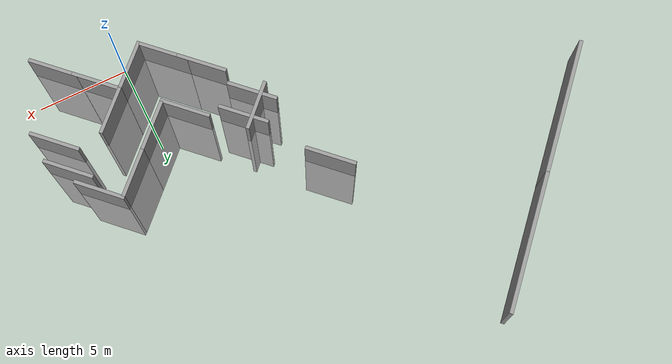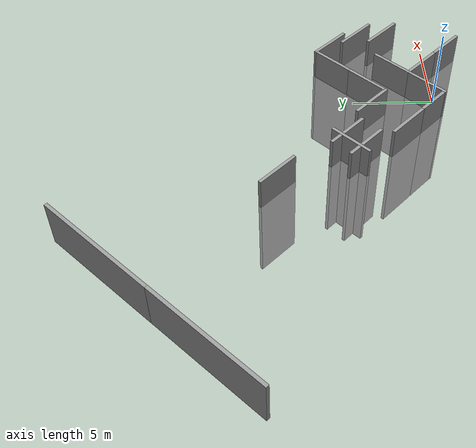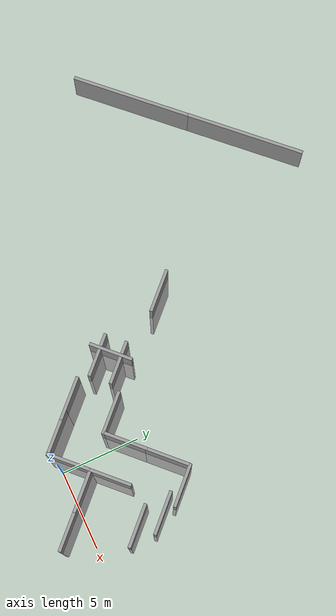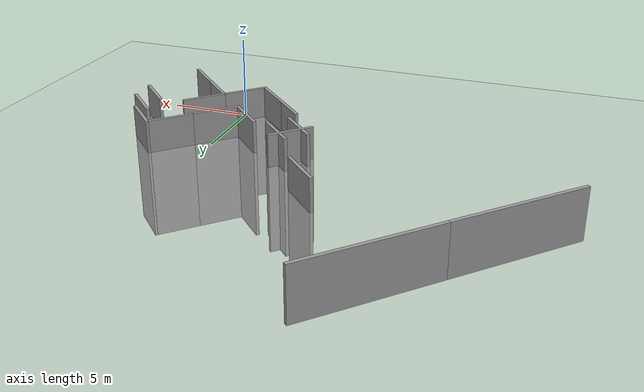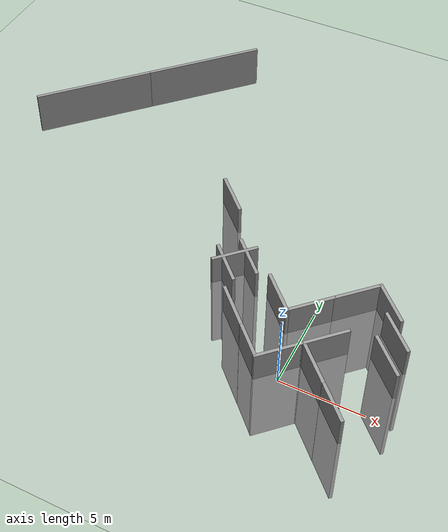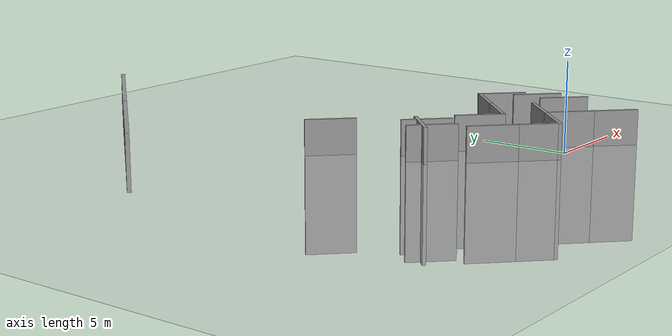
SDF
<sdf version="1.7">
 <world name="default">
  <light name="sun" type="directional">
   <pose>0 0 10 0 -0 0</pose>
   <diffuse>0.8 0.8 0.8 1</diffuse>
   <specular>0.2 0.2 0.2 1</specular>
   <attenuation>
    <range>1000</range>
    <constant>0.9</constant>
    <linear>0.01</linear>
    <quadratic>0.001</quadratic>
   </attenuation>
   <direction>-0.5 0.1 -0.9</direction>
   <spot><inner_angle>0</inner_angle><outer_angle>0</outer_angle><falloff>0</falloff></spot>
  </light>
  <gravity>0 0 -9.8</gravity>
  <magnetic_field>6e-06 2.3e-05 -4.2e-05</magnetic_field>
  <atmosphere type="adiabatic"/>
  <physics type="ode">
   <max_step_size>0.00025</max_step_size>
   <real_time_factor>1</real_time_factor>
   <real_time_update_rate>4000</real_time_update_rate>
  </physics>
  <scene><ambient>1 1 1 1</ambient><background>0.7 0.7 0.7 1</background><shadows>1</shadows></scene>
  <spherical_coordinates>
   <surface_model>EARTH_WGS84</surface_model>
   <latitude_deg>0</latitude_deg>
   <longitude_deg>0</longitude_deg>
   <elevation>0</elevation>
   <heading_deg>0</heading_deg>
  </spherical_coordinates>
  <model name="ground_plane">
   <static>1</static>
   <link name="link">
    <collision name="collision">
     <geometry><plane><normal>0 0 1</normal><size>100 100</size></plane></geometry>
     <surface>
      <contact><collide_bitmask>65535</collide_bitmask></contact>
      <friction><ode><mu>100</mu><mu2>50</mu2></ode></friction>
     </surface>
     <max_contacts>20</max_contacts>
    </collision>
    <visual name="visual">
     <cast_shadows>0</cast_shadows>
     <geometry><plane><normal>0 0 1</normal><size>100 100</size></plane></geometry>
     <material>
      <script><uri>file://media/materials/scripts/gazebo.material</uri><name>Gazebo/Grey</name></script>
     </material>
    </visual>
   </link>
   <pose>-5.10672 4.65884 0 0 -0 0</pose>
  </model>
  <model name="grey_wall">
   <static>1</static>
   <link name="link">
    <pose>0 0 1.4 0 -0 0</pose>
    <collision name="collision"><geometry><box><size>7.5 0.2 2.8</size></box></geometry></collision>
    <visual name="visual">
     <cast_shadows>0</cast_shadows>
     <geometry><box><size>7.5 0.2 2.8</size></box></geometry>
     <material>
      <script>
       <uri>model://grey_wall/materials/scripts</uri>
       <uri>model://grey_wall/materials/textures</uri>
       <name>vrc/grey_wall</name>
      </script>
     </material>
    </visual>
   </link>
   <pose>-14.0717 18.7948 0.84121 0 -0 0.808046</pose>
  </model>
  <model name="grey_wall_clone">
   <static>1</static>
   <link name="link">
    <pose>0 0 1.4 0 -0 0</pose>
    <collision name="collision"><geometry><box><size>7.5 0.2 2.8</size></box></geometry></collision>
    <visual name="visual">
     <cast_shadows>0</cast_shadows>
     <geometry><box><size>7.5 0.2 2.8</size></box></geometry>
     <material>
      <script>
       <uri>model://grey_wall/materials/scripts</uri>
       <uri>model://grey_wall/materials/textures</uri>
       <name>vrc/grey_wall</name>
      </script>
     </material>
    </visual>
   </link>
   <pose>-19.2303 13.392 0.84121 0 -0 0.808046</pose>
  </model>
  <audio><device>default</device></audio>
  <model name="grey_wall_0">
   <static>1</static>
   <link name="link">
    <pose>0 0 1.4 0 -0 0</pose>
    <collision name="collision"><geometry><box><size>7.5 0.2 2.8</size></box></geometry></collision>
    <visual name="visual">
     <cast_shadows>0</cast_shadows>
     <geometry><box><size>7.5 0.2 2.8</size></box></geometry>
     <material>
      <script>
       <uri>model://grey_wall/materials/scripts</uri>
       <uri>model://grey_wall/materials/textures</uri>
       <name>vrc/grey_wall</name>
      </script>
     </material>
    </visual>
   </link>
   <pose>-6.62154 8.95976 -1.8109 2.3562 -1.57079 -3.14159</pose>
  </model>
  <model name="grey_wall_0_clone">
   <static>1</static>
   <link name="link">
    <pose>0 0 1.4 0 -0 0</pose>
    <collision name="collision"><geometry><box><size>7.5 0.2 2.8</size></box></geometry></collision>
    <visual name="visual">
     <cast_shadows>0</cast_shadows>
     <geometry><box><size>7.5 0.2 2.8</size></box></geometry>
     <material>
      <script>
       <uri>model://grey_wall/materials/scripts</uri>
       <uri>model://grey_wall/materials/textures</uri>
       <name>vrc/grey_wall</name>
      </script>
     </material>
    </visual>
   </link>
   <pose>2.62661 -0.320634 -1.8109 2.34702 -1.57079 -3.13242</pose>
  </model>
  <model name="grey_wall_0_clone_0">
   <static>1</static>
   <link name="link">
    <pose>0 0 1.4 0 -0 0</pose>
    <collision name="collision"><geometry><box><size>7.5 0.2 2.8</size></box></geometry></collision>
    <visual name="visual">
     <cast_shadows>0</cast_shadows>
     <geometry><box><size>7.5 0.2 2.8</size></box></geometry>
     <material>
      <script>
       <uri>model://grey_wall/materials/scripts</uri>
       <uri>model://grey_wall/materials/textures</uri>
       <name>vrc/grey_wall</name>
      </script>
     </material>
    </visual>
   </link>
   <pose>4.38509 -2.07055 -1.8109 2.3562 -1.57079 -3.14159</pose>
  </model>
  <model name="grey_wall_0_clone_0_clone">
   <static>1</static>
   <link name="link">
    <pose>0 0 1.4 0 -0 0</pose>
    <collision name="collision"><geometry><box><size>7.5 0.2 2.8</size></box></geometry></collision>
    <visual name="visual">
     <cast_shadows>0</cast_shadows>
     <geometry><box><size>7.5 0.2 2.8</size></box></geometry>
     <material>
      <script>
       <uri>model://grey_wall/materials/scripts</uri>
       <uri>model://grey_wall/materials/textures</uri>
       <name>vrc/grey_wall</name>
      </script>
     </material>
    </visual>
   </link>
   <pose>5.85558 3.51124 -1.8109 2.34702 -1.57079 -3.13242</pose>
  </model>
  <model name="grey_wall_0_clone_0_clone_0">
   <static>1</static>
   <link name="link">
    <pose>0 0 1.4 0 -0 0</pose>
    <collision name="collision"><geometry><box><size>7.5 0.2 2.8</size></box></geometry></collision>
    <visual name="visual">
     <cast_shadows>0</cast_shadows>
     <geometry><box><size>7.5 0.2 2.8</size></box></geometry>
     <material>
      <script>
       <uri>model://grey_wall/materials/scripts</uri>
       <uri>model://grey_wall/materials/textures</uri>
       <name>vrc/grey_wall</name>
      </script>
     </material>
    </visual>
   </link>
   <pose>5.91185 1.80361 -1.8109 2.34702 -1.57079 -3.13242</pose>
  </model>
  <model name="grey_wall_0_clone_0_clone_clone">
   <static>1</static>
   <link name="link">
    <pose>0 0 1.4 0 -0 0</pose>
    <collision name="collision"><geometry><box><size>7.5 0.2 2.8</size></box></geometry></collision>
    <visual name="visual">
     <cast_shadows>0</cast_shadows>
     <geometry><box><size>7.5 0.2 2.8</size></box></geometry>
     <material>
      <script>
       <uri>model://grey_wall/materials/scripts</uri>
       <uri>model://grey_wall/materials/textures</uri>
       <name>vrc/grey_wall</name>
      </script>
     </material>
    </visual>
   </link>
   <pose>4.85368 5.27305 -1.8109 2.35102 -1.57079 -3.13642</pose>
  </model>
  <model name="grey_wall_0_clone_0_clone_0_clone">
   <static>1</static>
   <link name="link">
    <pose>0 0 1.4 0 -0 0</pose>
    <collision name="collision"><geometry><box><size>7.5 0.2 2.8</size></box></geometry></collision>
    <visual name="visual">
     <cast_shadows>0</cast_shadows>
     <geometry><box><size>7.5 0.2 2.8</size></box></geometry>
     <material>
      <script>
       <uri>model://grey_wall/materials/scripts</uri>
       <uri>model://grey_wall/materials/textures</uri>
       <name>vrc/grey_wall</name>
      </script>
     </material>
    </visual>
   </link>
   <pose>0.601646 1.48967 -1.8109 0.778192 -1.57079 -3.13439</pose>
  </model>
  <model name="grey_wall_0_clone_0_clone_0_clone_clone">
   <static>1</static>
   <link name="link">
    <pose>0 0 1.4 0 -0 0</pose>
    <collision name="collision"><geometry><box><size>7.5 0.2 2.8</size></box></geometry></collision>
    <visual name="visual">
     <cast_shadows>0</cast_shadows>
     <geometry><box><size>7.5 0.2 2.8</size></box></geometry>
     <material>
      <script>
       <uri>model://grey_wall/materials/scripts</uri>
       <uri>model://grey_wall/materials/textures</uri>
       <name>vrc/grey_wall</name>
      </script>
     </material>
    </visual>
   </link>
   <pose>0.921107 5.16672 -1.8109 0.784397 -1.57079 -3.14059</pose>
  </model>
  <model name="grey_wall_0_clone_0_clone_0_clone_clone_0">
   <static>1</static>
   <link name="link">
    <pose>0 0 1.4 0 -0 0</pose>
    <collision name="collision"><geometry><box><size>7.5 0.2 2.8</size></box></geometry></collision>
    <visual name="visual">
     <cast_shadows>0</cast_shadows>
     <geometry><box><size>7.5 0.2 2.8</size></box></geometry>
     <material>
      <script>
       <uri>model://grey_wall/materials/scripts</uri>
       <uri>model://grey_wall/materials/textures</uri>
       <name>vrc/grey_wall</name>
      </script>
     </material>
    </visual>
   </link>
   <pose>-0.984352 3.2639 -1.8109 0.784397 -1.57079 -3.14059</pose>
  </model>
  <model name="grey_wall_0_clone_clone">
   <static>1</static>
   <link name="link">
    <pose>0 0 1.4 0 -0 0</pose>
    <collision name="collision"><geometry><box><size>7.5 0.2 2.8</size></box></geometry></collision>
    <visual name="visual">
     <cast_shadows>0</cast_shadows>
     <geometry><box><size>7.5 0.2 2.8</size></box></geometry>
     <material>
      <script>
       <uri>model://grey_wall/materials/scripts</uri>
       <uri>model://grey_wall/materials/textures</uri>
       <name>vrc/grey_wall</name>
      </script>
     </material>
    </visual>
   </link>
   <pose>-0.941615 3.1615 -1.8109 2.34702 -1.57079 -3.13242</pose>
  </model>
  <model name="grey_wall_0_clone_0_clone_0_clone_clone_1">
   <static>1</static>
   <link name="link">
    <pose>0 0 1.4 0 -0 0</pose>
    <collision name="collision"><geometry><box><size>7.5 0.2 2.8</size></box></geometry></collision>
    <visual name="visual">
     <cast_shadows>0</cast_shadows>
     <geometry><box><size>7.5 0.2 2.8</size></box></geometry>
     <material>
      <script>
       <uri>model://grey_wall/materials/scripts</uri>
       <uri>model://grey_wall/materials/textures</uri>
       <name>vrc/grey_wall</name>
      </script>
     </material>
    </visual>
   </link>
   <pose>-1.31113 -0.412604 -1.8109 0.784397 -1.57079 -3.14059</pose>
  </model>
  <model name="grey_wall_0_clone_clone_0">
   <static>1</static>
   <link name="link">
    <pose>0 0 1.4 0 -0 0</pose>
    <collision name="collision"><geometry><box><size>7.5 0.2 2.8</size></box></geometry></collision>
    <visual name="visual">
     <cast_shadows>0</cast_shadows>
     <geometry><box><size>7.5 0.2 2.8</size></box></geometry>
     <material>
      <script>
       <uri>model://grey_wall/materials/scripts</uri>
       <uri>model://grey_wall/materials/textures</uri>
       <name>vrc/grey_wall</name>
      </script>
     </material>
    </visual>
   </link>
   <pose>-1.27332 -0.302736 -1.8109 2.34702 -1.57079 -3.13242</pose>
  </model>
  <model name="grey_wall_0_clone_clone_0_clone">
   <static>1</static>
   <link name="link">
    <pose>0 0 1.4 0 -0 0</pose>
    <collision name="collision"><geometry><box><size>7.5 0.2 2.8</size></box></geometry></collision>
    <visual name="visual">
     <cast_shadows>0</cast_shadows>
     <geometry><box><size>7.5 0.2 2.8</size></box></geometry>
     <material>
      <script>
       <uri>model://grey_wall/materials/scripts</uri>
       <uri>model://grey_wall/materials/textures</uri>
       <name>vrc/grey_wall</name>
      </script>
     </material>
    </visual>
   </link>
   <pose>-2.80489 1.22051 -1.8109 2.35102 -1.57079 -3.13642</pose>
  </model>
  <model name="grey_wall_0_clone_clone_0_clone_clone">
   <static>1</static>
   <link name="link">
    <pose>0 0 1.4 0 -0 0</pose>
    <collision name="collision"><geometry><box><size>7.5 0.2 2.8</size></box></geometry></collision>
    <visual name="visual">
     <cast_shadows>0</cast_shadows>
     <geometry><box><size>7.5 0.2 2.8</size></box></geometry>
     <material>
      <script>
       <uri>model://grey_wall/materials/scripts</uri>
       <uri>model://grey_wall/materials/textures</uri>
       <name>vrc/grey_wall</name>
      </script>
     </material>
    </visual>
   </link>
   <pose>-4.53432 3.86247 -1.8109 2.35102 -1.57079 -3.13642</pose>
  </model>
  <model name="grey_wall_0_clone_clone_0_clone_clone_clone">
   <static>1</static>
   <link name="link">
    <pose>0 0 1.4 0 -0 0</pose>
    <collision name="collision"><geometry><box><size>7.5 0.2 2.8</size></box></geometry></collision>
    <visual name="visual">
     <cast_shadows>0</cast_shadows>
     <geometry><box><size>7.5 0.2 2.8</size></box></geometry>
     <material>
      <script>
       <uri>model://grey_wall/materials/scripts</uri>
       <uri>model://grey_wall/materials/textures</uri>
       <name>vrc/grey_wall</name>
      </script>
     </material>
    </visual>
   </link>
   <pose>-3.56293 4.84694 -1.8109 2.35102 -1.57079 -3.13642</pose>
  </model>
  <model name="grey_wall_0_clone_0_clone_0_clone_clone_0_clone">
   <static>1</static>
   <link name="link">
    <pose>0 0 1.4 0 -0 0</pose>
    <collision name="collision"><geometry><box><size>7.5 0.2 2.8</size></box></geometry></collision>
    <visual name="visual">
     <cast_shadows>0</cast_shadows>
     <geometry><box><size>7.5 0.2 2.8</size></box></geometry>
     <material>
      <script>
       <uri>model://grey_wall/materials/scripts</uri>
       <uri>model://grey_wall/materials/textures</uri>
       <name>vrc/grey_wall</name>
      </script>
     </material>
    </visual>
   </link>
   <pose>-6.35399 4.69712 -1.8109 0.779349 -1.57079 -3.13554</pose>
  </model>
 </world>
</sdf>
